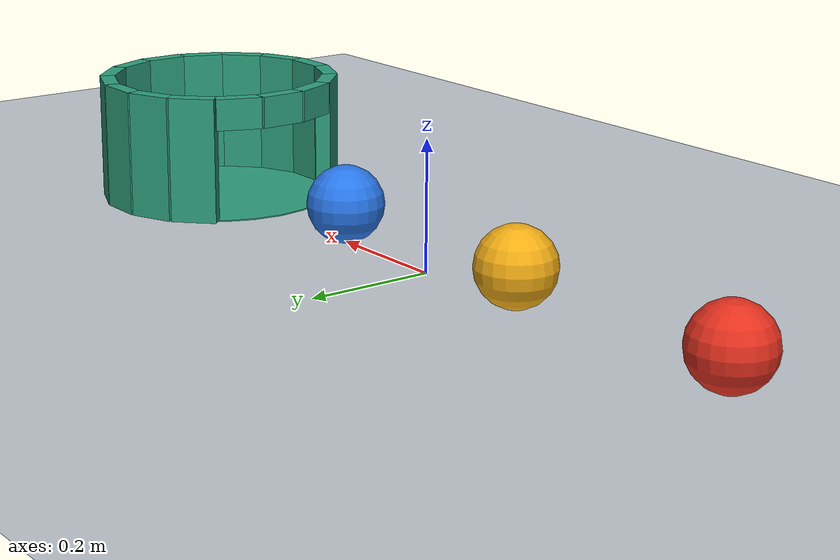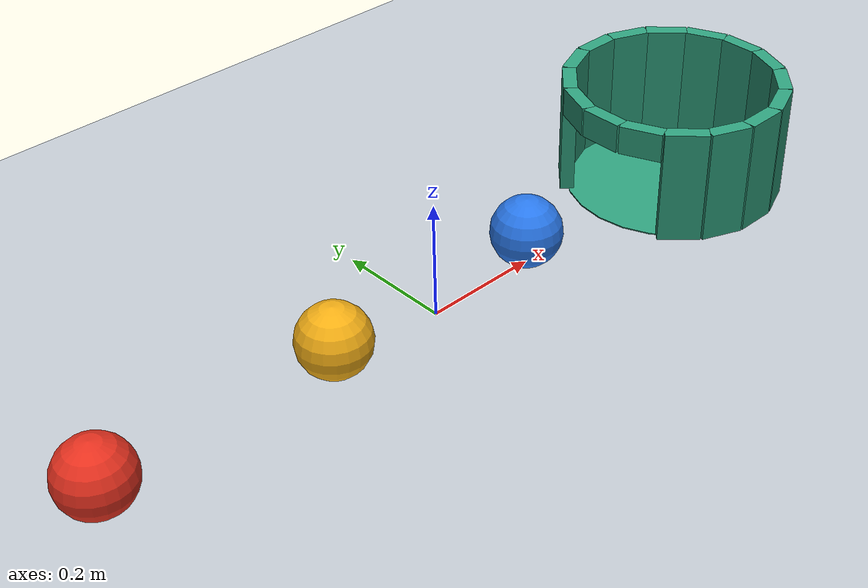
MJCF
<mujoco model="three_balls_into_a_cup">
  <compiler angle="degree" inertiafromgeom="true"/>
  <option timestep="0.002" gravity="0 0 -9.81" integrator="implicitfast" cone="elliptic" iterations="80"/>
  <size nconmax="200" njmax="1000"/>

  <visual>
    <headlight ambient="0.45 0.45 0.45" diffuse="0.7 0.7 0.7" specular="0.2 0.2 0.2"/>
    <map znear="0.01"/>
  </visual>

  <worldbody>
    <light name="overhead" pos="0 -1 3" dir="0 0 -1" diffuse="0.8 0.8 0.8"/>
    <camera name="overview" pos="0.05 -2.1 1.5" xyaxes="1 0 0 0 0.58 0.815"/>

    <geom name="floor" type="plane" size="3 2 0.1" rgba="0.76 0.79 0.82 1" condim="6" priority="1" friction="0.7 0.005 0.002" solref="0.008 1" solimp="0.95 0.99 0.001"/>

    <body name="ball1" pos="-0.60 0 0.06">
      <freejoint name="ball1_free"/>
      <geom name="ball1_sphere" type="sphere" size="0.06" mass="0.09" rgba="0.9 0.19 0.12 1" condim="6" friction="0.05 0.001 0.00005" solref="0.03 0.08" solimp="0.95 0.99 0.002"/>
    </body>

    <body name="ball2" pos="-0.20 0 0.06">
      <freejoint name="ball2_free"/>
      <geom name="ball2_sphere" type="sphere" size="0.06" mass="0.18" rgba="0.95 0.68 0.08 1" condim="6" friction="0.05 0.001 0.00005" solref="0.03 0.08" solimp="0.95 0.99 0.002"/>
    </body>

    <body name="ball3" pos="0.20 0 0.06">
      <freejoint name="ball3_free"/>
      <geom name="ball3_sphere" type="sphere" size="0.06" mass="0.18" rgba="0.16 0.47 0.92 1" condim="6" friction="0.05 0.001 0.00005" solref="0.03 0.08" solimp="0.95 0.99 0.002"/>
    </body>

    <!-- Upright cup with a low entrance beneath its front rim. -->
    <!-- The thin bottom provides a small, traversable lip. -->
    <body name="cup" pos="0.56 0 0">
      <geom name="cup_bottom" type="cylinder" pos="0 0 0.001" size="0.181 0.001" rgba="0.18 0.63 0.49 1" condim="6" priority="2" friction="0.8 0.01 0.004" solref="0.008 1" solimp="0.95 0.99 0.001"/>

      <geom name="cup_wall_00" type="box" pos="0.180000 0 0.101" euler="0 0 0" size="0.012 0.0363 0.100" rgba="0.18 0.63 0.49 1" condim="6" priority="2" friction="0.8 0.01 0.004"/>
      <geom name="cup_wall_01" type="box" pos="0.166298 0.068883 0.101" euler="0 0 22.5" size="0.012 0.0363 0.100" rgba="0.18 0.63 0.49 1" condim="6" priority="2" friction="0.8 0.01 0.004"/>
      <geom name="cup_wall_02" type="box" pos="0.127279 0.127279 0.101" euler="0 0 45" size="0.012 0.0363 0.100" rgba="0.18 0.63 0.49 1" condim="6" priority="2" friction="0.8 0.01 0.004"/>
      <geom name="cup_wall_03" type="box" pos="0.068883 0.166298 0.101" euler="0 0 67.5" size="0.012 0.0363 0.100" rgba="0.18 0.63 0.49 1" condim="6" priority="2" friction="0.8 0.01 0.004"/>
      <geom name="cup_wall_04" type="box" pos="0 0.180000 0.101" euler="0 0 90" size="0.012 0.0363 0.100" rgba="0.18 0.63 0.49 1" condim="6" priority="2" friction="0.8 0.01 0.004"/>
      <geom name="cup_wall_05" type="box" pos="-0.068883 0.166298 0.101" euler="0 0 112.5" size="0.012 0.0363 0.100" rgba="0.18 0.63 0.49 1" condim="6" priority="2" friction="0.8 0.01 0.004"/>
      <geom name="cup_wall_06" type="box" pos="-0.127279 0.127279 0.101" euler="0 0 135" size="0.012 0.0363 0.100" rgba="0.18 0.63 0.49 1" condim="6" priority="2" friction="0.8 0.01 0.004"/>

      <geom name="cup_front_rim_07" type="box" pos="-0.166298 0.068883 0.176" euler="0 0 157.5" size="0.012 0.0363 0.025" rgba="0.18 0.63 0.49 1" condim="6" priority="2" friction="0.8 0.01 0.004"/>
      <geom name="cup_front_rim_08" type="box" pos="-0.180000 0 0.176" euler="0 0 180" size="0.012 0.0363 0.025" rgba="0.18 0.63 0.49 1" condim="6" priority="2" friction="0.8 0.01 0.004"/>
      <geom name="cup_front_rim_09" type="box" pos="-0.166298 -0.068883 0.176" euler="0 0 202.5" size="0.012 0.0363 0.025" rgba="0.18 0.63 0.49 1" condim="6" priority="2" friction="0.8 0.01 0.004"/>

      <geom name="cup_wall_10" type="box" pos="-0.127279 -0.127279 0.101" euler="0 0 225" size="0.012 0.0363 0.100" rgba="0.18 0.63 0.49 1" condim="6" priority="2" friction="0.8 0.01 0.004"/>
      <geom name="cup_wall_11" type="box" pos="-0.068883 -0.166298 0.101" euler="0 0 247.5" size="0.012 0.0363 0.100" rgba="0.18 0.63 0.49 1" condim="6" priority="2" friction="0.8 0.01 0.004"/>
      <geom name="cup_wall_12" type="box" pos="0 -0.180000 0.101" euler="0 0 270" size="0.012 0.0363 0.100" rgba="0.18 0.63 0.49 1" condim="6" priority="2" friction="0.8 0.01 0.004"/>
      <geom name="cup_wall_13" type="box" pos="0.068883 -0.166298 0.101" euler="0 0 292.5" size="0.012 0.0363 0.100" rgba="0.18 0.63 0.49 1" condim="6" priority="2" friction="0.8 0.01 0.004"/>
      <geom name="cup_wall_14" type="box" pos="0.127279 -0.127279 0.101" euler="0 0 315" size="0.012 0.0363 0.100" rgba="0.18 0.63 0.49 1" condim="6" priority="2" friction="0.8 0.01 0.004"/>
      <geom name="cup_wall_15" type="box" pos="0.166298 -0.068883 0.101" euler="0 0 337.5" size="0.012 0.0363 0.100" rgba="0.18 0.63 0.49 1" condim="6" priority="2" friction="0.8 0.01 0.004"/>
    </body>
  </worldbody>

  <keyframe>
    <key name="start" qpos="-0.60 0 0.06 1 0 0 0 -0.20 0 0.06 1 0 0 0 0.20 0 0.06 1 0 0 0" qvel="1.8 0 0 0 30 0 0 0 0 0 0 0 0 0 0 0 0 0"/>
  </keyframe>
</mujoco>
